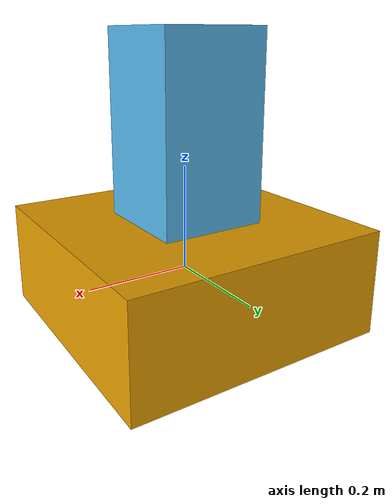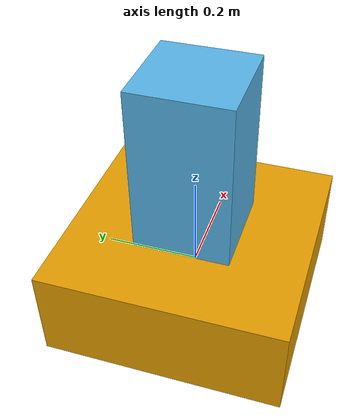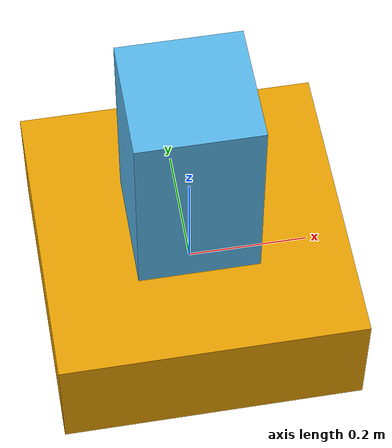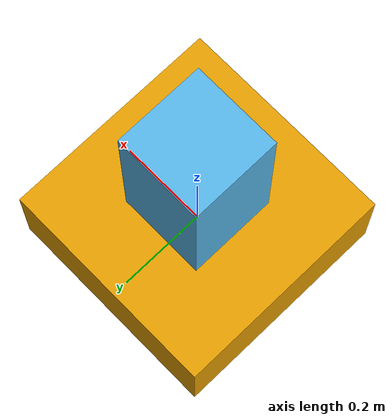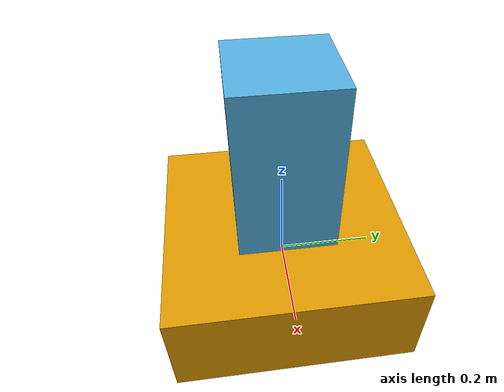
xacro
<?xml version="1.0"?>
<robot name="wifibot_model" xmlns:xacro="http://ros.org/wiki/xacro">
  <property name="height1" value="0.2"/>
  <property name="height2" value="0.6"/>

  <link name="link1">

    <visual>
      <origin xyz="0 0 0.0" rpy="0 0 0" />
      <geometry>
         <box size="0.5 0.5 ${height1}" />
      </geometry>
    </visual>

    <collision>
      <origin xyz="0 0 0.0" rpy="0 0 0" />
      <geometry>
        <box size="0.5 0.5 ${height1}" />
      </geometry>
    </collision>
  </link>

  <link name="link2">
    <visual>
      <origin xyz="0.0 0.0 0.0" rpy="0 0 0" />
      <geometry>
		 <box size="0.2 0.2 ${height2}" />
      </geometry>
    </visual>
    <collision>
      <origin xyz="0.0 0.0 0" rpy="0 0 0" />
      <geometry>
	<box size="0.2 0.2 ${height2}" />
      </geometry>
    </collision>
  </link>

  <joint name="joint_1_2" type="fixed">
    <origin xyz="0 0 ${0.5*height1+0.5*0.5*height1}" rpy="0 0 0" />
    <parent link="link1"/>
    <child link="link2" />
  </joint>

</robot>
